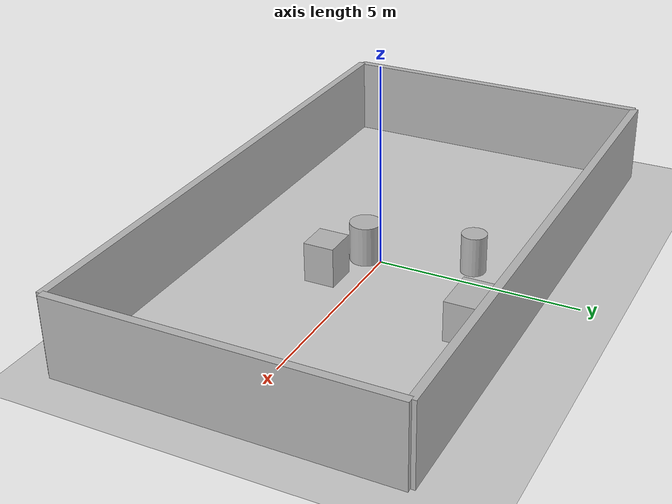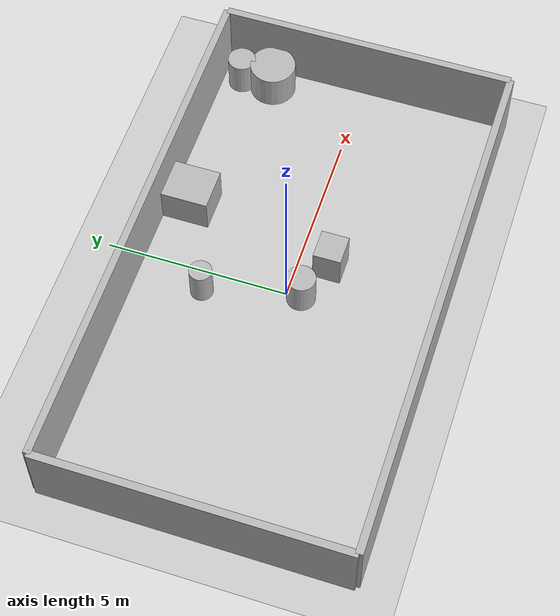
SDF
<?xml version="1.0"?>
<sdf version="1.6">
  <world name="env_60">

    <include><uri>model://ground_plane</uri></include>
    <include><uri>model://sun</uri></include>

    <!-- WALLS -->
    <model name="wall_north"><static>true</static><pose>0 4.07767301599294 1 0 0 0</pose>
      <link name="link"><collision name="collision">
        <geometry><box><size>14.449014450851632 0.2 2</size></box></geometry>
      </collision><visual name="visual">
        <geometry><box><size>14.449014450851632 0.2 2</size></box></geometry>
      </visual></link>
    </model>

    <model name="wall_south"><static>true</static><pose>0 -4.07767301599294 1 0 0 0</pose>
      <link name="link"><collision name="collision">
        <geometry><box><size>14.449014450851632 0.2 2</size></box></geometry>
      </collision><visual name="visual">
        <geometry><box><size>14.449014450851632 0.2 2</size></box></geometry>
      </visual></link>
    </model>

    <model name="wall_east"><static>true</static><pose>7.224507225425816 0 1 0 0 1.57</pose>
      <link name="link"><collision name="collision">
        <geometry><box><size>8.15534603198588 0.2 2</size></box></geometry>
      </collision><visual name="visual">
        <geometry><box><size>8.15534603198588 0.2 2</size></box></geometry>
      </visual></link>
    </model>

    <model name="wall_west"><static>true</static><pose>-7.224507225425816 0 1 0 0 1.57</pose>
      <link name="link"><collision name="collision">
        <geometry><box><size>8.15534603198588 0.2 2</size></box></geometry>
      </collision><visual name="visual">
        <geometry><box><size>8.15534603198588 0.2 2</size></box></geometry>
      </visual></link>
    </model>

    <!-- SENSOR -->

    <model name="lidar_sensor">
      <static>true</static>
      <pose>-3.71794284120378 0.2455928705979593 0.4 0 0 0</pose>
      <link name="link">
        <sensor name="lidar" type="ray">
          <pose>0 0 0 0 0 0</pose>
          <visualize>true</visualize>
          <always_on>true</always_on>
          <update_rate>10</update_rate>
          <ray>
            <scan><horizontal>
              <samples>90</samples>
              <resolution>1</resolution>
              <min_angle>-3.14159</min_angle>
              <max_angle>3.14159</max_angle>
            </horizontal></scan>
            <range><min>0.15</min><max>20.0</max><resolution>0.01</resolution></range>
          </ray>
          <plugin name="lidar_plugin" filename="liblidar_plugin.so"/>
        </sensor>
      </link>
    </model>

    <!-- OBSTACLES -->

    <model name="obstacle_0">
      <static>true</static>
      <pose>1.9408440213534988 3.406235386059689 0.5 0 0 0</pose>
      <link name="link">
        <collision name="collision">
          <geometry><box><size>1.15 1.44 1.0</size></box></geometry>
        </collision>
        <visual name="visual">
          <geometry><box><size>1.15 1.44 1.0</size></box></geometry>
        </visual>
      </link>
    </model>

    <model name="obstacle_1">
      <static>true</static>
      <pose>1.161855444092586 -0.8546159169965928 0.5 0 0 0</pose>
      <link name="link">
        <collision name="collision">
          <geometry><box><size>0.81 0.76 1.0</size></box></geometry>
        </collision>
        <visual name="visual">
          <geometry><box><size>0.81 0.76 1.0</size></box></geometry>
        </visual>
      </link>
    </model>

    <model name="obstacle_2">
      <static>true</static>
      <pose>-0.5862665240975584 2.1570874328800986 0.5 0 0 0</pose>
      <link name="link">
        <collision name="collision">
          <geometry><cylinder><radius>0.31</radius><length>1.0</length></cylinder></geometry>
        </collision>
        <visual name="visual">
          <geometry><cylinder><radius>0.31</radius><length>1.0</length></cylinder></geometry>
        </visual>
      </link>
    </model>

    <model name="obstacle_3">
      <static>true</static>
      <pose>6.5342779599436405 2.523703817002181 0.5 0 0 0</pose>
      <link name="link">
        <collision name="collision">
          <geometry><cylinder><radius>0.64</radius><length>1.0</length></cylinder></geometry>
        </collision>
        <visual name="visual">
          <geometry><cylinder><radius>0.64</radius><length>1.0</length></cylinder></geometry>
        </visual>
      </link>
    </model>

    <model name="obstacle_4">
      <static>true</static>
      <pose>6.467498862477351 3.4241313251706567 0.5 0 0 0</pose>
      <link name="link">
        <collision name="collision">
          <geometry><cylinder><radius>0.39</radius><length>1.0</length></cylinder></geometry>
        </collision>
        <visual name="visual">
          <geometry><cylinder><radius>0.39</radius><length>1.0</length></cylinder></geometry>
        </visual>
      </link>
    </model>

    <model name="obstacle_5">
      <static>true</static>
      <pose>0.004095764707983562 -0.40414424920114067 0.5 0 0 0</pose>
      <link name="link">
        <collision name="collision">
          <geometry><cylinder><radius>0.39</radius><length>1.0</length></cylinder></geometry>
        </collision>
        <visual name="visual">
          <geometry><cylinder><radius>0.39</radius><length>1.0</length></cylinder></geometry>
        </visual>
      </link>
    </model>

  </world>
</sdf>
